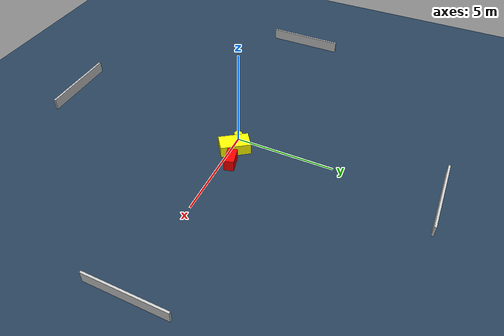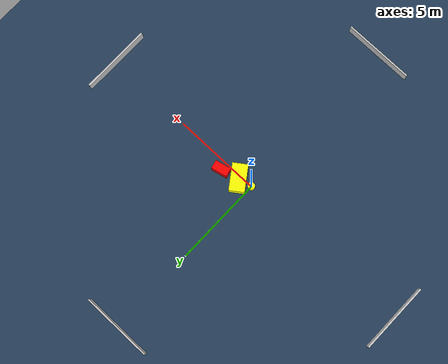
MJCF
<?xml version="1.0" ?>
<mujoco model="generated_environment">
  <option timestep="0.01" integrator="RK4" cone="elliptic"/>
  <default>
    <geom density="1"/>
  </default>
  <asset>
    <texture builtin="gradient" height="3072" name="skybox" rgb1="0.3 0.5 0.7" rgb2="0 0 0" type="skybox" width="512"/>
    <texture builtin="checker" height="300" name="groundplane" rgb1="0.2 0.3 0.4" rgb2="0.1 0.2 0.3" type="2d" width="300"/>
    <material name="groundplane" reflectance="0.2" texrepeat="5 5" texture="groundplane"/>
  </asset>
  <worldbody>
    <light dir="0 0 -1" directional="true" pos="0 0 1.5"/>
    <geom condim="3" friction="0.5 0.005 0.001" material="groundplane" name="floor" pos="0 0 0" size="0 0 0.05" type="plane"/>
    <body name="walls">
      <geom name="wall_1" condim="4" pos="-10.0 0.0 0.3" rgba="0.800000011920929 0.800000011920929 0.800000011920929 1.0" size="0.05 2.0 0.3" type="box"/>
      <geom name="wall_2" condim="4" pos="10.0 0.0 0.3" rgba="0.800000011920929 0.800000011920929 0.800000011920929 1.0" size="0.05 2.0 0.3" type="box"/>
      <geom name="wall_3" condim="4" pos="0.0 -10.0 0.3" rgba="0.800000011920929 0.800000011920929 0.800000011920929 1.0" size="2.0 0.05 0.3" type="box"/>
      <geom name="wall_4" condim="4" pos="0.0 10.0 0.3" rgba="0.800000011920929 0.800000011920929 0.800000011920929 1.0" size="2.0 0.05 0.3" type="box"/>
    </body>
    <body name="robot">
      <joint name="joint_x" type="slide" pos="0 0 0" axis="1 0 0"/>
      <joint name="joint_y" type="slide" pos="0 0 0" axis="0 1 0"/>
      <geom name="robot" type="cylinder" pos="0.0 0.0 0.2" size="0.2 0.2 0.0" mass="5.0" friction="1.0 0.005 0.0001" condim="4" rgba="1.0 1.0 0.0 1.0"/>
    </body>
    <body name="obstacle_1_movable">
      <geom name="obstacle_1_movable" condim="4" pos="0.7761800651375671 0.16252196116446344 0.3" euler="0 0 305.36681690616354" friction="0.0 0.005 0.001" rgba="1.0 1.0 0.0 1.0" size="0.7529132438683392 0.4289369588882982 0.3" type="box" mass="0.1"/>
      <joint type="free"/>
    </body>
    <body name="obstacle_2_static">
      <geom name="obstacle_2_static" condim="4" pos="1.773200184354407 0.43490243274748613 0.3" euler="0 0 193.20439903342856" friction="0.0 0.005 0.001" rgba="1.0 0.0 0.0 1.0" size="0.4523550058611793 0.24732671049756996 0.3" type="box"/>
    </body>
  </worldbody>
  <actuator>
    <motor name="actuator_x" joint="joint_x" gear="1" ctrlrange="-1 1"/>
    <motor name="actuator_y" joint="joint_y" gear="1" ctrlrange="-1 1"/>
  </actuator>
</mujoco>
